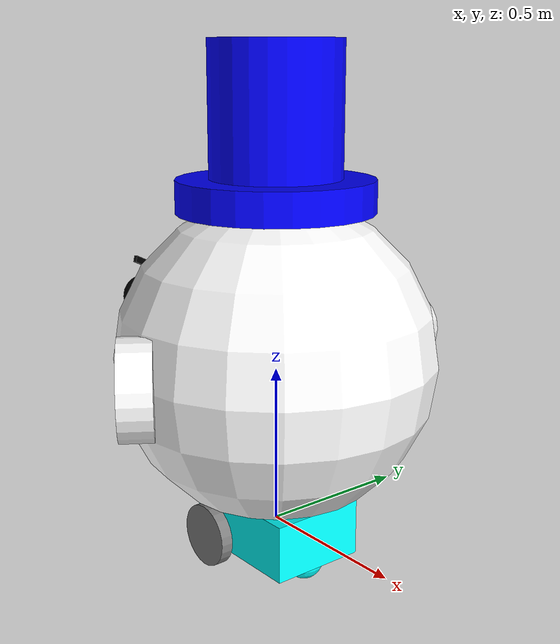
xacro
<?xml version="1.0"?>
<robot name="sam_bot" xmlns:xacro="http://ros.org/wiki/xacro">

  <xacro:include filename="gazebo.urdf.xacro" />

  <!-- Define robot constants -->
  <xacro:property name="base_width" value="0.31"/>
  <xacro:property name="base_length" value="0.42"/>
  <xacro:property name="base_height" value="0.18"/>

  <xacro:property name="wheel_radius" value="0.10"/>
  <xacro:property name="wheel_width" value="0.04"/>
  <xacro:property name="wheel_ygap" value="0.025"/>
  <xacro:property name="wheel_zoff" value="0.05"/>
  <xacro:property name="wheel_xoff" value="0.12"/>

  <xacro:property name="caster_xoff" value="0.14"/>

  <!-- Define intertial property macros  -->
  <xacro:macro name="box_inertia" params="m w h d">
    <inertial>
      <origin xyz="0 0 0" rpy="${pi/2} 0 ${pi/2}"/>
      <mass value="${m}"/>
      <inertia ixx="${(m/12) * (h*h + d*d)}" ixy="0.0" ixz="0.0" iyy="${(m/12) * (w*w + d*d)}" iyz="0.0" izz="${(m/12) * (w*w + h*h)}"/>
    </inertial>
  </xacro:macro>

  <xacro:macro name="cylinder_inertia" params="m r h">
    <inertial>
      <origin xyz="0 0 0" rpy="${pi/2} 0 0" />
      <mass value="${m}"/>
      <inertia ixx="${(m/12) * (3*r*r + h*h)}" ixy = "0" ixz = "0" iyy="${(m/12) * (3*r*r + h*h)}" iyz = "0" izz="${(m/2) * (r*r)}"/>
    </inertial>
  </xacro:macro>

  <xacro:macro name="sphere_inertia" params="m r">
    <inertial>
      <mass value="${m}"/>
      <inertia ixx="${(2/5) * m * (r*r)}" ixy="0.0" ixz="0.0" iyy="${(2/5) * m * (r*r)}" iyz="0.0" izz="${(2/5) * m * (r*r)}"/>
    </inertial>
  </xacro:macro>

  <!-- Properties of the head -->
  <link name="head">
    <visual>
      <geometry>
        <sphere radius="0.5"/>
      </geometry>
      <material name="white">
        <color rgba="1 1 1 1"/>
      </material>
    </visual>
    <collision>
      <geometry>
        <sphere radius="0.5"/>
      </geometry>
    </collision>
  </link>

  <!-- Properties of the hat -->
  <link name="hat">
    <visual>
      <geometry>
        <cylinder length="0.5" radius="0.2"/>
      </geometry>
      <material name="blue">
        <color rgba="0 0 1 1"/>
      </material>
    </visual>
    <collision>
      <geometry>
        <cylinder length="0.5" radius="0.2"/>
      </geometry>
    </collision>
  </link>

    <!-- Properties of the hat -->
  <link name="hat1">
    <visual>
      <geometry>
        <cylinder length="0.1" radius="0.3"/>
      </geometry>
      <material name="blue">
        <color rgba="0 0 1 1"/>
      </material>
    </visual>
    <collision>
      <geometry>
        <cylinder length="0.1" radius="0.3"/>
      </geometry>
    </collision>
  </link>

  <!-- Properties of the nose -->
  <link name="nose">
    <visual>
      <geometry>
        <sphere radius="0.1"/>
      </geometry>
      <material name="red">
        <color rgba="1 0 0 1"/>
      </material>
    </visual>
    <collision>
      <geometry>
        <sphere radius="0.1"/>
      </geometry>
    </collision>
  </link>

  <!-- Properties of the eyes -->
  <link name="left_eye">
    <visual>
      <geometry>
        <sphere radius="0.07"/>
      </geometry>
      <material name="black">
        <color rgba="0 0 0 1"/>
      </material>
    </visual>
    <collision>
      <geometry>
        <sphere radius="0.07"/>
      </geometry>
    </collision>
  </link>

  <link name="right_eye">
    <visual>
      <geometry>
        <sphere radius="0.07"/>
      </geometry>
      <material name="black">
        <color rgba="0 0 0 1"/>
      </material>
    </visual>
    <collision>
      <geometry>
        <sphere radius="0.07"/>
      </geometry>
    </collision>
  </link>

  <!-- Properties of the mouth -->
  <link name="mouth">
    <visual>
      <geometry>
        <cylinder length="0.1" radius="0.2"/>
      </geometry>
      <material name="red">
        <color rgba="1 0 0 1"/>
      </material>
    </visual>
    <collision>
      <geometry>
        <cylinder length="0.1" radius="0.2"/>
      </geometry>
    </collision>
  </link>

  <!-- Properties of the ears -->
  <link name="left_ear">
    <visual>
      <geometry>
        <cylinder length="0.1" radius="0.15"/>
      </geometry>
      <material name="white">
        <color rgba="1 1 1 1"/>
      </material>
    </visual>
    <collision>
      <geometry>
        <cylinder length="0.1" radius="0.15"/>
      </geometry>
    </collision>
  </link>

  <link name="right_ear">
    <visual>
      <geometry>
        <cylinder length="0.1" radius="0.15"/>
      </geometry>
      <material name="white">
        <color rgba="1 1 1 1"/>
      </material>
    </visual>
    <collision>
      <geometry>
        <cylinder length="0.1" radius="0.15"/>
      </geometry>
    </collision>
  </link>

  <!-- Properties of the eyebrows -->
  <link name="left_eyebrow">
    <visual>
      <geometry>
        <box size="0.2 0.02 0.01"/>
      </geometry>
      <material name="black">
        <color rgba="0 0 0 1"/>
      </material>
    </visual>
    <collision>
      <geometry>
        <box size="0.2 0.02 0.01"/>
      </geometry>
    </collision>
  </link>

  <link name="right_eyebrow">
    <visual>
      <geometry>
        <box size="0.2 0.02 0.01"/>
      </geometry>
      <material name="black">
        <color rgba="0 0 0 1"/>
      </material>
    </visual>
    <collision>
      <geometry>
        <box size="0.2 0.02 0.01"/>
      </geometry>
    </collision>
  </link>

  <!-- Joints connecting the features to the head -->
  <joint name="hat1_joint" type="fixed">
    <parent link="hat"/>
    <child link="hat1"/>
    <origin xyz="0 0 -0.2" rpy="0 0 0"/>
  </joint>

  <joint name="hat_joint" type="fixed">
    <parent link="head"/>
    <child link="hat"/>
    <origin xyz="0 0 0.7" rpy="0 0 0"/>
  </joint>

  <joint name="nose_joint" type="fixed">
    <parent link="head"/>
    <child link="nose"/>
    <origin xyz="0.5 0 0" rpy="0 0 0"/>
  </joint>

  <joint name="left_eye_joint" type="fixed">
    <parent link="head"/>
    <child link="left_eye"/>
    <origin xyz="0.4 -0.22 0.15" rpy="0 0 0"/>
  </joint>

  <joint name="right_eye_joint" type="fixed">
    <parent link="head"/>
    <child link="right_eye"/>
    <origin xyz="0.4 0.22 0.15" rpy="0 0 0"/>
  </joint>

  <joint name="mouth_joint" type="fixed">
    <parent link="head"/>
    <child link="mouth"/>
    <origin xyz="0.24 0 -0.2" rpy="0 0.7 0"/>
  </joint>

  <joint name="left_ear_joint" type="fixed">
    <parent link="head"/>
    <child link="left_ear"/>
    <origin xyz="0 -0.5 0" rpy="0 1.57 -1.0"/>
  </joint>

  <joint name="right_ear_joint" type="fixed">
    <parent link="head"/>
    <child link="right_ear"/>
    <origin xyz="0 0.5 0" rpy="0 1.57 1.0"/>
  </joint>

  <joint name="left_eyebrow_joint" type="fixed">
    <parent link="head"/>
    <child link="left_eyebrow"/>
    <origin xyz="0.39 -0.2 0.25" rpy="1.57 0 1.1"/>
  </joint>

  <joint name="right_eyebrow_joint" type="fixed">
    <parent link="head"/>
    <child link="right_eyebrow"/>
    <origin xyz="0.39 0.2 0.25" rpy="1.57 0.4 -1.1"/>
  </joint>

  <!-- Robot Base -->
  <link name="base_link">
    <visual>
      <geometry>
        <box size="${base_length} ${base_width} ${base_height}"/>
      </geometry>
      <material name="Cyan">
        <color rgba="0 1.0 1.0 1.0"/>
      </material>
    </visual>

    <collision>
      <geometry>
        <box size="${base_length} ${base_width} ${base_height}"/>
      </geometry>
    </collision>

    <xacro:box_inertia m="15" w="${base_width}" d="${base_length}" h="${base_height}"/>

  </link>

  <joint name="clown_head_joint" type="fixed">
    <parent link="base_link"/>
    <child link="head"/>
    <origin xyz="0 0 ${base_height/2 + 0.45}" rpy="0 0 3.14159265359"/>
  </joint>

  <!-- Robot Footprint -->
  <link name="base_footprint"/>

  <joint name="base_joint" type="fixed">
    <parent link="base_link"/>
    <child link="base_footprint"/>
    <origin xyz="0.0 0.0 ${-(wheel_radius+wheel_zoff)}" rpy="0 0 0"/>
  </joint>

    <!-- Wheels -->
  <xacro:macro name="wheel" params="prefix x_reflect y_reflect">
    <link name="${prefix}_link">
      <visual>
        <origin xyz="0 0 0" rpy="${pi/2} 0 0"/>
        <geometry>
            <cylinder radius="${wheel_radius}" length="${wheel_width}"/>
        </geometry>
        <material name="Gray">
          <color rgba="0.5 0.5 0.5 1.0"/>
        </material>
      </visual>
      <collision>
        <origin xyz="0 0 0" rpy="${pi/2} 0 0"/>
        <geometry>
          <cylinder radius="${wheel_radius}" length="${wheel_width}"/>
        </geometry>
      </collision>

      <xacro:cylinder_inertia m="0.5" r="${wheel_radius}" h="${wheel_width}"/>

    </link>

    <joint name="${prefix}_joint" type="continuous">
      <parent link="base_link"/>
      <child link="${prefix}_link"/>
      <origin xyz="${x_reflect*wheel_xoff} ${y_reflect*(base_width/2+wheel_ygap)} ${-wheel_zoff}" rpy="0 0 0"/>
      <axis xyz="0 1 0"/>
    </joint>
  </xacro:macro>

  <xacro:wheel prefix="drivewhl_l" x_reflect="-1" y_reflect="1" />
  <xacro:wheel prefix="drivewhl_r" x_reflect="-1" y_reflect="-1" />

  <!-- Caster Wheel -->
  <link name="front_caster">
    <visual>
      <geometry>
        <sphere radius="${(wheel_radius+wheel_zoff-(base_height/2))}"/>
      </geometry>
      <material name="Cyan">
        <color rgba="0 1.0 1.0 1.0"/>
      </material>
    </visual>
    <collision>
      <origin xyz="0 0 0" rpy="0 0 0"/>
      <geometry>
        <sphere radius="${(wheel_radius+wheel_zoff-(base_height/2))}"/>
      </geometry>
    </collision>

    <xacro:sphere_inertia m="0.5" r="${(wheel_radius+wheel_zoff-(base_height/2))}"/>
  </link>

  <joint name="caster_joint" type="fixed">
    <parent link="base_link"/>
    <child link="front_caster"/>
    <origin xyz="${caster_xoff} 0.0 ${-(base_height/2)}" rpy="0 0 0"/>
  </joint>

</robot>
